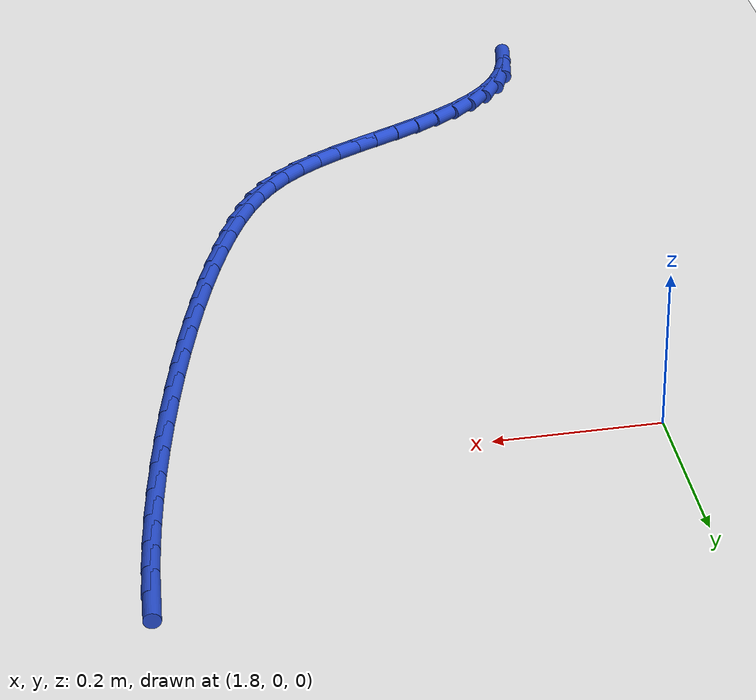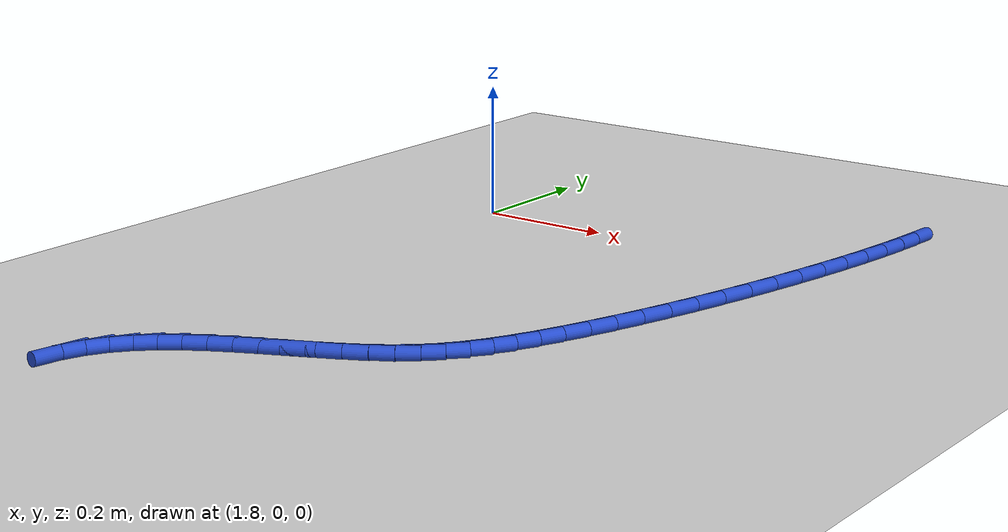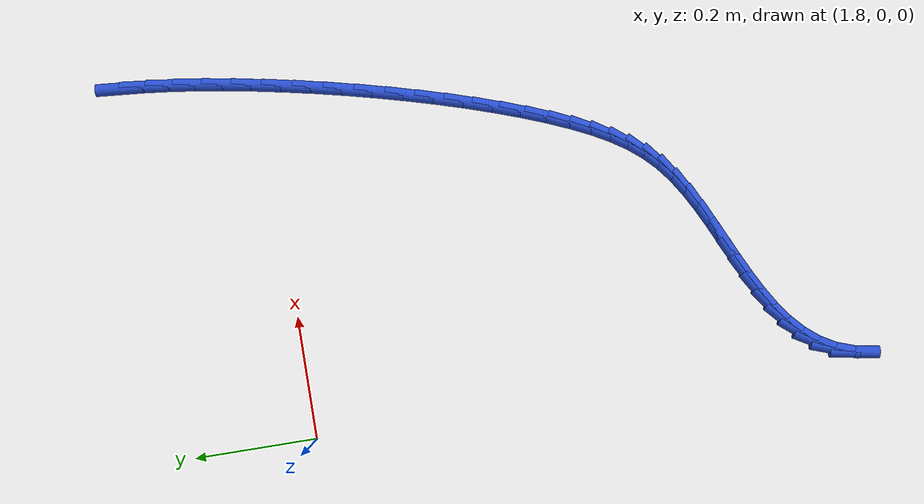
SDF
<sdf version="1.6">
 <world name="default">
  <model name="ground_plane">
   <static>1</static>
   <link name="link">
    <collision name="collision">
     <geometry><plane><normal>0 0 1</normal><size>100 100</size></plane></geometry>
     <surface><friction><ode><mu>100</mu><mu2>50</mu2></ode></friction></surface>
    </collision>
    <visual name="visual">
     <cast_shadows>0</cast_shadows>
     <geometry><plane><normal>0 0 1</normal><size>100 100</size></plane></geometry>
     <material>
      <script><uri>file://media/materials/scripts/gazebo.material</uri><name>Gazebo/WhiteGlow</name></script>
     </material>
    </visual>
   </link>
  </model>
  <model name="line">
   <link name="link_141">
    <pose>2.4102691772292095 0.22092573960887318 0.01 0 1.57 1.4861995638645942</pose>
    <collision name="collision">
     <geometry><cylinder><radius>0.01</radius><length>0.08</length></cylinder></geometry>
    </collision>
    <visual name="visual">
     <material>
      <script><name>Gazebo/Blue</name><uri>file://media/materials/scripts/gazebo.material</uri></script>
     </material>
     <geometry><cylinder><radius>0.01</radius><length>0.08</length></cylinder></geometry>
    </visual>
   </link>
   <link name="link_142">
    <pose>2.4069689010640403 0.18200699898573183 0.01 0 1.57 1.4585357626049364</pose>
    <collision name="collision">
     <geometry><cylinder><radius>0.01</radius><length>0.08</length></cylinder></geometry>
    </collision>
    <visual name="visual">
     <material>
      <script><name>Gazebo/Blue</name><uri>file://media/materials/scripts/gazebo.material</uri></script>
     </material>
     <geometry><cylinder><radius>0.01</radius><length>0.08</length></cylinder></geometry>
    </visual>
   </link>
   <link name="link_143">
    <pose>2.402289353407999 0.14049755836657188 0.01 0 1.57 1.4349176012191818</pose>
    <collision name="collision">
     <geometry><cylinder><radius>0.01</radius><length>0.08</length></cylinder></geometry>
    </collision>
    <visual name="visual">
     <material>
      <script><name>Gazebo/Blue</name><uri>file://media/materials/scripts/gazebo.material</uri></script>
     </material>
     <geometry><cylinder><radius>0.01</radius><length>0.08</length></cylinder></geometry>
    </visual>
   </link>
   <link name="link_144">
    <pose>2.3963149226113547 0.0967996450998559 0.01 0 1.57 1.4141254572149258</pose>
    <collision name="collision">
     <geometry><cylinder><radius>0.01</radius><length>0.08</length></cylinder></geometry>
    </collision>
    <visual name="visual">
     <material>
      <script><name>Gazebo/Blue</name><uri>file://media/materials/scripts/gazebo.material</uri></script>
     </material>
     <geometry><cylinder><radius>0.01</radius><length>0.08</length></cylinder></geometry>
    </visual>
   </link>
   <link name="link_145">
    <pose>2.389129997024375 0.0513154865340466 0.01 0 1.57 1.3952928982351454</pose>
    <collision name="collision">
     <geometry><cylinder><radius>0.01</radius><length>0.08</length></cylinder></geometry>
    </collision>
    <visual name="visual">
     <material>
      <script><name>Gazebo/Blue</name><uri>file://media/materials/scripts/gazebo.material</uri></script>
     </material>
     <geometry><cylinder><radius>0.01</radius><length>0.08</length></cylinder></geometry>
    </visual>
   </link>
   <link name="link_146">
    <pose>2.380818964997329 0.004447310017604927 0.01 0 1.57 1.3777700281059782</pose>
    <collision name="collision">
     <geometry><cylinder><radius>0.01</radius><length>0.08</length></cylinder></geometry>
    </collision>
    <visual name="visual">
     <material>
      <script><name>Gazebo/Blue</name><uri>file://media/materials/scripts/gazebo.material</uri></script>
     </material>
     <geometry><cylinder><radius>0.01</radius><length>0.08</length></cylinder></geometry>
    </visual>
   </link>
   <link name="link_147">
    <pose>2.371466214880484 -0.04340265710100365 0.01 0 1.57 1.3610394503467425</pose>
    <collision name="collision">
     <geometry><cylinder><radius>0.01</radius><length>0.08</length></cylinder></geometry>
    </collision>
    <visual name="visual">
     <material>
      <script><name>Gazebo/Blue</name><uri>file://media/materials/scripts/gazebo.material</uri></script>
     </material>
     <geometry><cylinder><radius>0.01</radius><length>0.08</length></cylinder></geometry>
    </visual>
   </link>
   <link name="link_148">
    <pose>2.3611561350241095 -0.09183218747331802 0.01 0 1.57 1.344660684567712</pose>
    <collision name="collision">
     <geometry><cylinder><radius>0.01</radius><length>0.08</length></cylinder></geometry>
    </collision>
    <visual name="visual">
     <material>
      <script><name>Gazebo/Blue</name><uri>file://media/materials/scripts/gazebo.material</uri></script>
     </material>
     <geometry><cylinder><radius>0.01</radius><length>0.08</length></cylinder></geometry>
    </visual>
   </link>
   <link name="link_149">
    <pose>2.349973113778472 -0.14043905375087554 0.01 0 1.57 1.3282297220825263</pose>
    <collision name="collision">
     <geometry><cylinder><radius>0.01</radius><length>0.08</length></cylinder></geometry>
    </collision>
    <visual name="visual">
     <material>
      <script><name>Gazebo/Blue</name><uri>file://media/materials/scripts/gazebo.material</uri></script>
     </material>
     <geometry><cylinder><radius>0.01</radius><length>0.08</length></cylinder></geometry>
    </visual>
   </link>
   <link name="link_150">
    <pose>2.3380015394938405 -0.18882102858521385 0.01 0 1.57 1.3113455771223665</pose>
    <collision name="collision">
     <geometry><cylinder><radius>0.01</radius><length>0.08</length></cylinder></geometry>
    </collision>
    <visual name="visual">
     <material>
      <script><name>Gazebo/Blue</name><uri>file://media/materials/scripts/gazebo.material</uri></script>
     </material>
     <geometry><cylinder><radius>0.01</radius><length>0.08</length></cylinder></geometry>
    </visual>
   </link>
   <link name="link_151">
    <pose>2.3253258005204835 -0.23657588462787024 0.01 0 1.57 1.2935779381996404</pose>
    <collision name="collision">
     <geometry><cylinder><radius>0.01</radius><length>0.08</length></cylinder></geometry>
    </collision>
    <visual name="visual">
     <material>
      <script><name>Gazebo/Blue</name><uri>file://media/materials/scripts/gazebo.material</uri></script>
     </material>
     <geometry><cylinder><radius>0.01</radius><length>0.08</length></cylinder></geometry>
    </visual>
   </link>
   <link name="link_152">
    <pose>2.312030285208668 -0.28330139453038217 0.01 0 1.57 1.2744304570611251</pose>
    <collision name="collision">
     <geometry><cylinder><radius>0.01</radius><length>0.08</length></cylinder></geometry>
    </collision>
    <visual name="visual">
     <material>
      <script><name>Gazebo/Blue</name><uri>file://media/materials/scripts/gazebo.material</uri></script>
     </material>
     <geometry><cylinder><radius>0.01</radius><length>0.08</length></cylinder></geometry>
    </visual>
   </link>
   <link name="link_153">
    <pose>2.2981993819086637 -0.3285953309442871 0.01 0 1.57 1.2532930643833864</pose>
    <collision name="collision">
     <geometry><cylinder><radius>0.01</radius><length>0.08</length></cylinder></geometry>
    </collision>
    <visual name="visual">
     <material>
      <script><name>Gazebo/Blue</name><uri>file://media/materials/scripts/gazebo.material</uri></script>
     </material>
     <geometry><cylinder><radius>0.01</radius><length>0.08</length></cylinder></geometry>
    </visual>
   </link>
   <link name="link_154">
    <pose>2.283917478970738 -0.37205546652112254 0.01 0 1.57 1.229373506933108</pose>
    <collision name="collision">
     <geometry><cylinder><radius>0.01</radius><length>0.08</length></cylinder></geometry>
    </collision>
    <visual name="visual">
     <material>
      <script><name>Gazebo/Blue</name><uri>file://media/materials/scripts/gazebo.material</uri></script>
     </material>
     <geometry><cylinder><radius>0.01</radius><length>0.08</length></cylinder></geometry>
    </visual>
   </link>
   <link name="link_155">
    <pose>2.2692689647451587 -0.41327957391242715 0.01 0 1.57 1.2015916346802014</pose>
    <collision name="collision">
     <geometry><cylinder><radius>0.01</radius><length>0.08</length></cylinder></geometry>
    </collision>
    <visual name="visual">
     <material>
      <script><name>Gazebo/Blue</name><uri>file://media/materials/scripts/gazebo.material</uri></script>
     </material>
     <geometry><cylinder><radius>0.01</radius><length>0.08</length></cylinder></geometry>
    </visual>
   </link>
   <link name="link_156">
    <pose>2.2543382275821955 -0.4518654257697358 0.01 0 1.57 1.1684065625563806</pose>
    <collision name="collision">
     <geometry><cylinder><radius>0.01</radius><length>0.08</length></cylinder></geometry>
    </collision>
    <visual name="visual">
     <material>
      <script><name>Gazebo/Blue</name><uri>file://media/materials/scripts/gazebo.material</uri></script>
     </material>
     <geometry><cylinder><radius>0.01</radius><length>0.08</length></cylinder></geometry>
    </visual>
   </link>
   <link name="link_157">
    <pose>2.2392096558321146 -0.48741079474458726 0.01 0 1.57 1.1266574617087686</pose>
    <collision name="collision">
     <geometry><cylinder><radius>0.01</radius><length>0.08</length></cylinder></geometry>
    </collision>
    <visual name="visual">
     <material>
      <script><name>Gazebo/Blue</name><uri>file://media/materials/scripts/gazebo.material</uri></script>
     </material>
     <geometry><cylinder><radius>0.01</radius><length>0.08</length></cylinder></geometry>
    </visual>
   </link>
   <link name="link_158">
    <pose>2.223897573919698 -0.5195894037470338 0.01 0 1.57 1.0684885484652016</pose>
    <collision name="collision">
     <geometry><cylinder><radius>0.01</radius><length>0.08</length></cylinder></geometry>
    </collision>
    <visual name="visual">
     <material>
      <script><name>Gazebo/Blue</name><uri>file://media/materials/scripts/gazebo.material</uri></script>
     </material>
     <geometry><cylinder><radius>0.01</radius><length>0.08</length></cylinder></geometry>
    </visual>
   </link>
   <link name="link_159">
    <pose>2.2080061279639955 -0.5485196146099537 0.01 0 1.57 0.9906257705247095</pose>
    <collision name="collision">
     <geometry><cylinder><radius>0.01</radius><length>0.08</length></cylinder></geometry>
    </collision>
    <visual name="visual">
     <material>
      <script><name>Gazebo/Blue</name><uri>file://media/materials/scripts/gazebo.material</uri></script>
     </material>
     <geometry><cylinder><radius>0.01</radius><length>0.08</length></cylinder></geometry>
    </visual>
   </link>
   <link name="link_160">
    <pose>2.1909906461150914 -0.574481109890632 0.01 0 1.57 0.8943220748413347</pose>
    <collision name="collision">
     <geometry><cylinder><radius>0.01</radius><length>0.08</length></cylinder></geometry>
    </collision>
    <visual name="visual">
     <material>
      <script><name>Gazebo/Blue</name><uri>file://media/materials/scripts/gazebo.material</uri></script>
     </material>
     <geometry><cylinder><radius>0.01</radius><length>0.08</length></cylinder></geometry>
    </visual>
   </link>
   <link name="link_161">
    <pose>2.172306247647605 -0.5977537985702324 0.01 0 1.57 0.784574334203518</pose>
    <collision name="collision">
     <geometry><cylinder><radius>0.01</radius><length>0.08</length></cylinder></geometry>
    </collision>
    <visual name="visual">
     <material>
      <script><name>Gazebo/Blue</name><uri>file://media/materials/scripts/gazebo.material</uri></script>
     </material>
     <geometry><cylinder><radius>0.01</radius><length>0.08</length></cylinder></geometry>
    </visual>
   </link>
   <link name="link_162">
    <pose>2.1514080518361545 -0.6186175896299184 0.01 0 1.57 0.6707315228842569</pose>
    <collision name="collision">
     <geometry><cylinder><radius>0.01</radius><length>0.08</length></cylinder></geometry>
    </collision>
    <visual name="visual">
     <material>
      <script><name>Gazebo/Blue</name><uri>file://media/materials/scripts/gazebo.material</uri></script>
     </material>
     <geometry><cylinder><radius>0.01</radius><length>0.08</length></cylinder></geometry>
    </visual>
   </link>
   <link name="link_163">
    <pose>2.127789615965088 -0.6373575322530035 0.01 0 1.57 0.5744941490233129</pose>
    <collision name="collision">
     <geometry><cylinder><radius>0.01</radius><length>0.08</length></cylinder></geometry>
    </collision>
    <visual name="visual">
     <material>
      <script><name>Gazebo/Blue</name><uri>file://media/materials/scripts/gazebo.material</uri></script>
     </material>
     <geometry><cylinder><radius>0.01</radius><length>0.08</length></cylinder></geometry>
    </visual>
   </link>
   <link name="link_164">
    <pose>2.101554491327269 -0.6543402483300189 0.01 0 1.57 0.5059422584160792</pose>
    <collision name="collision">
     <geometry><cylinder><radius>0.01</radius><length>0.08</length></cylinder></geometry>
    </collision>
    <visual name="visual">
     <material>
      <script><name>Gazebo/Blue</name><uri>file://media/materials/scripts/gazebo.material</uri></script>
     </material>
     <geometry><cylinder><radius>0.01</radius><length>0.08</length></cylinder></geometry>
    </visual>
   </link>
   <link name="link_165">
    <pose>2.0732942901055695 -0.6699976267008908 0.01 0 1.57 0.4616445317091506</pose>
    <collision name="collision">
     <geometry><cylinder><radius>0.01</radius><length>0.08</length></cylinder></geometry>
    </collision>
    <visual name="visual">
     <material>
      <script><name>Gazebo/Blue</name><uri>file://media/materials/scripts/gazebo.material</uri></script>
     </material>
     <geometry><cylinder><radius>0.01</radius><length>0.08</length></cylinder></geometry>
    </visual>
   </link>
   <link name="link_166">
    <pose>2.043614295046886 -0.6847633843299223 0.01 0 1.57 0.43870090435808196</pose>
    <collision name="collision">
     <geometry><cylinder><radius>0.01</radius><length>0.08</length></cylinder></geometry>
    </collision>
    <visual name="visual">
     <material>
      <script><name>Gazebo/Blue</name><uri>file://media/materials/scripts/gazebo.material</uri></script>
     </material>
     <geometry><cylinder><radius>0.01</radius><length>0.08</length></cylinder></geometry>
    </visual>
   </link>
   <link name="link_167">
    <pose>2.0131197888981136 -0.6990712381814175 0.01 0 1.57 0.43542986161949127</pose>
    <collision name="collision">
     <geometry><cylinder><radius>0.01</radius><length>0.08</length></cylinder></geometry>
    </collision>
    <visual name="visual">
     <material>
      <script><name>Gazebo/Blue</name><uri>file://media/materials/scripts/gazebo.material</uri></script>
     </material>
     <geometry><cylinder><radius>0.01</radius><length>0.08</length></cylinder></geometry>
    </visual>
   </link>
   <link name="link_168">
    <pose>1.9824160544061504 -0.7133549052196797 0.01 0 1.57 0.4514147395013338</pose>
    <collision name="collision">
     <geometry><cylinder><radius>0.01</radius><length>0.08</length></cylinder></geometry>
    </collision>
    <visual name="visual">
     <material>
      <script><name>Gazebo/Blue</name><uri>file://media/materials/scripts/gazebo.material</uri></script>
     </material>
     <geometry><cylinder><radius>0.01</radius><length>0.08</length></cylinder></geometry>
    </visual>
   </link>
   <link name="link_169">
    <pose>1.9521083743178944 -0.7280481024090125 0.01 0 1.57 0.4874673295353381</pose>
    <collision name="collision">
     <geometry><cylinder><radius>0.01</radius><length>0.08</length></cylinder></geometry>
    </collision>
    <visual name="visual">
     <material>
      <script><name>Gazebo/Blue</name><uri>file://media/materials/scripts/gazebo.material</uri></script>
     </material>
     <geometry><cylinder><radius>0.01</radius><length>0.08</length></cylinder></geometry>
    </visual>
   </link>
   <link name="link_170">
    <pose>1.9228020313802419 -0.7435845467137193 0.01 0 1.57 0.5455421332534738</pose>
    <collision name="collision">
     <geometry><cylinder><radius>0.01</radius><length>0.08</length></cylinder></geometry>
    </collision>
    <visual name="visual">
     <material>
      <script><name>Gazebo/Blue</name><uri>file://media/materials/scripts/gazebo.material</uri></script>
     </material>
     <geometry><cylinder><radius>0.01</radius><length>0.08</length></cylinder></geometry>
    </visual>
   </link>
   <link name="link_171">
    <pose>1.895102308340089 -0.7603979550981036 0.01 0 1.57 0.628475258195679</pose>
    <collision name="collision">
     <geometry><cylinder><radius>0.01</radius><length>0.08</length></cylinder></geometry>
    </collision>
    <visual name="visual">
     <material>
      <script><name>Gazebo/Blue</name><uri>file://media/materials/scripts/gazebo.material</uri></script>
     </material>
     <geometry><cylinder><radius>0.01</radius><length>0.08</length></cylinder></geometry>
    </visual>
   </link>
   <link name="link_172">
    <pose>1.8696144879443342 -0.7789220445264692 0.01 0 1.57 0.7392337521489805</pose>
    <collision name="collision">
     <geometry><cylinder><radius>0.01</radius><length>0.08</length></cylinder></geometry>
    </collision>
    <visual name="visual">
     <material>
      <script><name>Gazebo/Blue</name><uri>file://media/materials/scripts/gazebo.material</uri></script>
     </material>
     <geometry><cylinder><radius>0.01</radius><length>0.08</length></cylinder></geometry>
    </visual>
   </link>
   <link name="link_173">
    <pose>1.8469438529398725 -0.7995905319631198 0.01 0 1.57 0.8792143672508601</pose>
    <collision name="collision">
     <geometry><cylinder><radius>0.01</radius><length>0.08</length></cylinder></geometry>
    </collision>
    <visual name="visual">
     <material>
      <script><name>Gazebo/Blue</name><uri>file://media/materials/scripts/gazebo.material</uri></script>
     </material>
     <geometry><cylinder><radius>0.01</radius><length>0.08</length></cylinder></geometry>
    </visual>
   </link>
   <link name="link_174">
    <pose>1.8276956860736036 -0.8228371343723578 0.01 0 1.57 1.0454826086268394</pose>
    <collision name="collision">
     <geometry><cylinder><radius>0.01</radius><length>0.08</length></cylinder></geometry>
    </collision>
    <visual name="visual">
     <material>
      <script><name>Gazebo/Blue</name><uri>file://media/materials/scripts/gazebo.material</uri></script>
     </material>
     <geometry><cylinder><radius>0.01</radius><length>0.08</length></cylinder></geometry>
    </visual>
   </link>
   <link name="link_175">
    <pose>1.812475270092423 -0.8490955687184876 0.01 0 1.57 1.22832276108222</pose>
    <collision name="collision">
     <geometry><cylinder><radius>0.01</radius><length>0.08</length></cylinder></geometry>
    </collision>
    <visual name="visual">
     <material>
      <script><name>Gazebo/Blue</name><uri>file://media/materials/scripts/gazebo.material</uri></script>
     </material>
     <geometry><cylinder><radius>0.01</radius><length>0.08</length></cylinder></geometry>
    </visual>
   </link>
   <link name="link_176">
    <pose>1.801885816371544 -0.8787976396618032 0.01 0 1.57 1.3954626202112537</pose>
    <collision name="collision">
     <geometry><cylinder><radius>0.01</radius><length>0.08</length></cylinder></geometry>
    </collision>
    <visual name="visual">
     <material>
      <script><name>Gazebo/Blue</name><uri>file://media/materials/scripts/gazebo.material</uri></script>
     </material>
     <geometry><cylinder><radius>0.01</radius><length>0.08</length></cylinder></geometry>
    </visual>
   </link>
  </model>
 </world>
</sdf>
